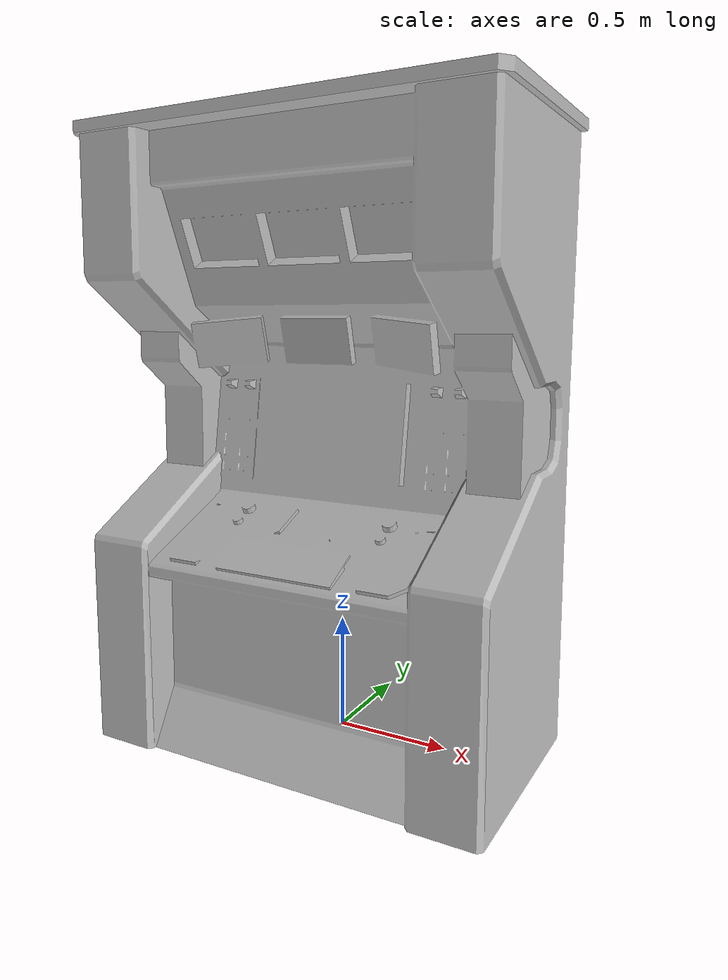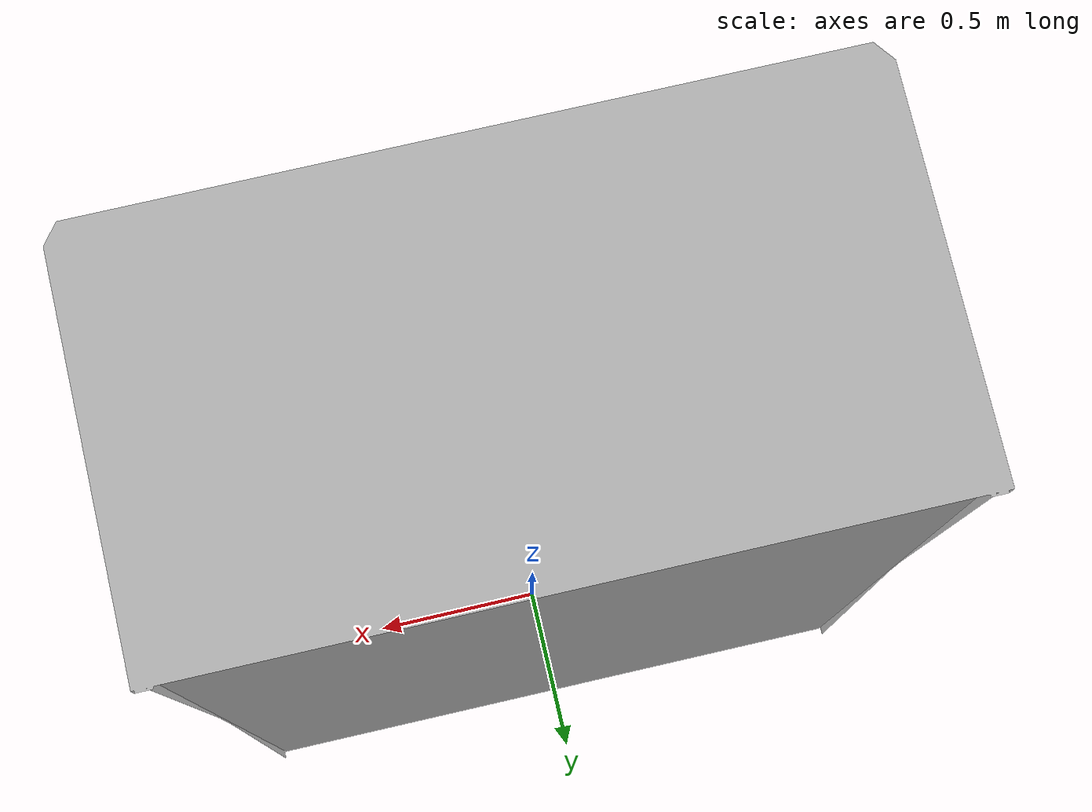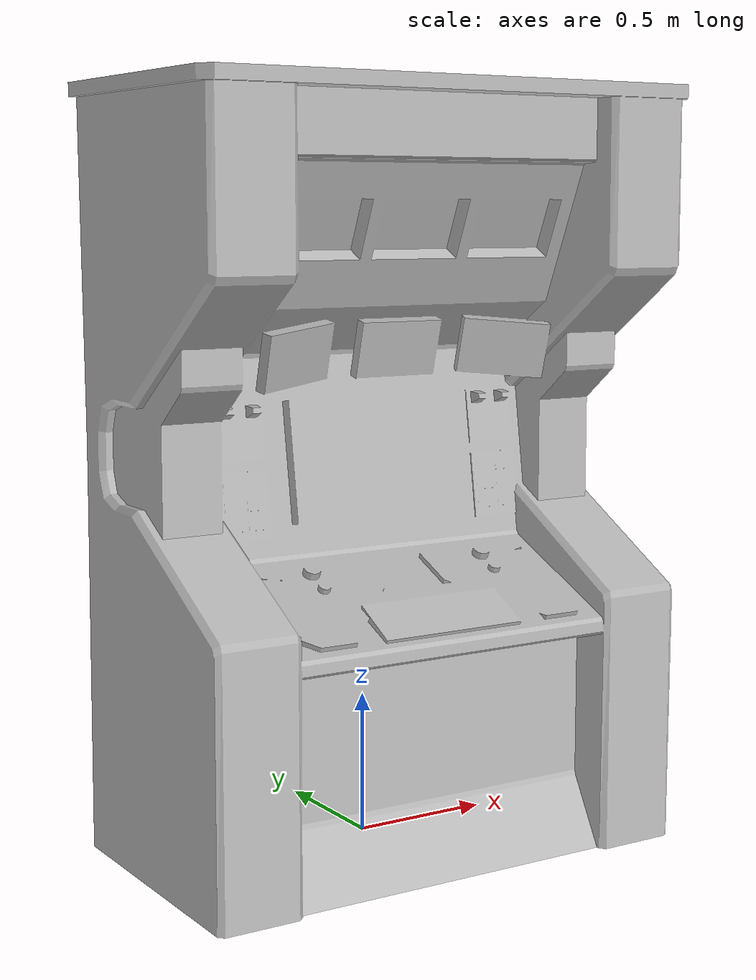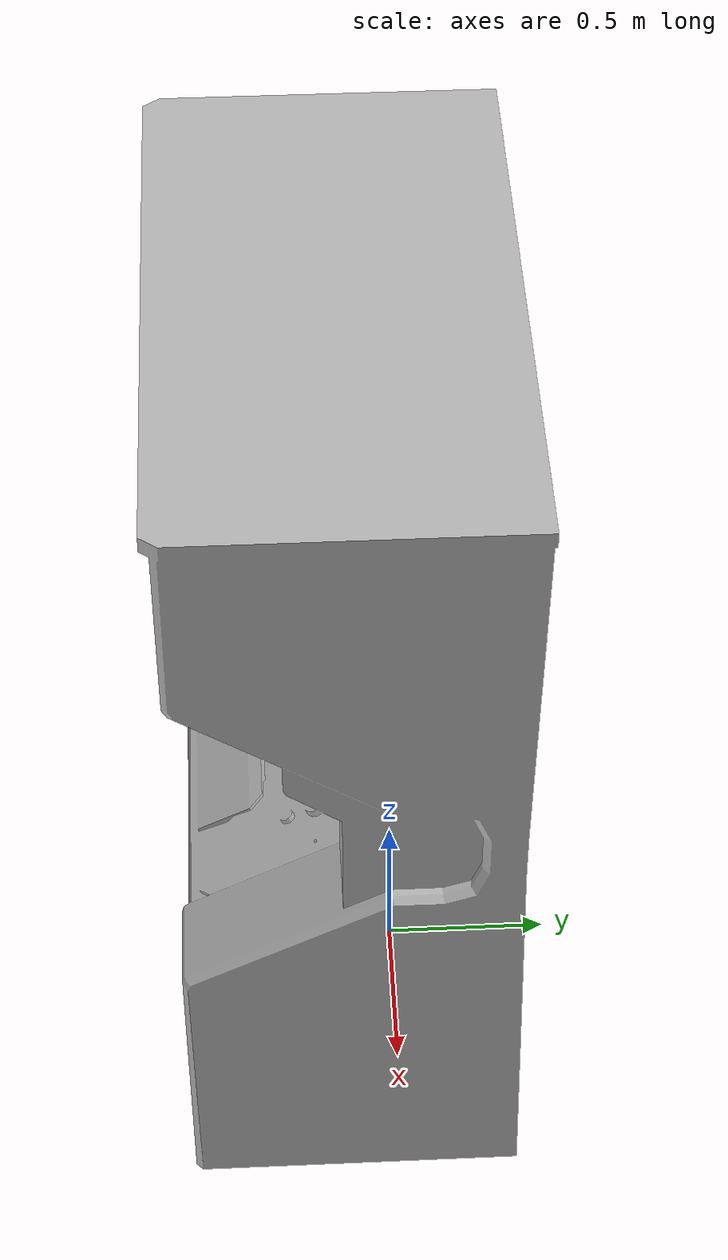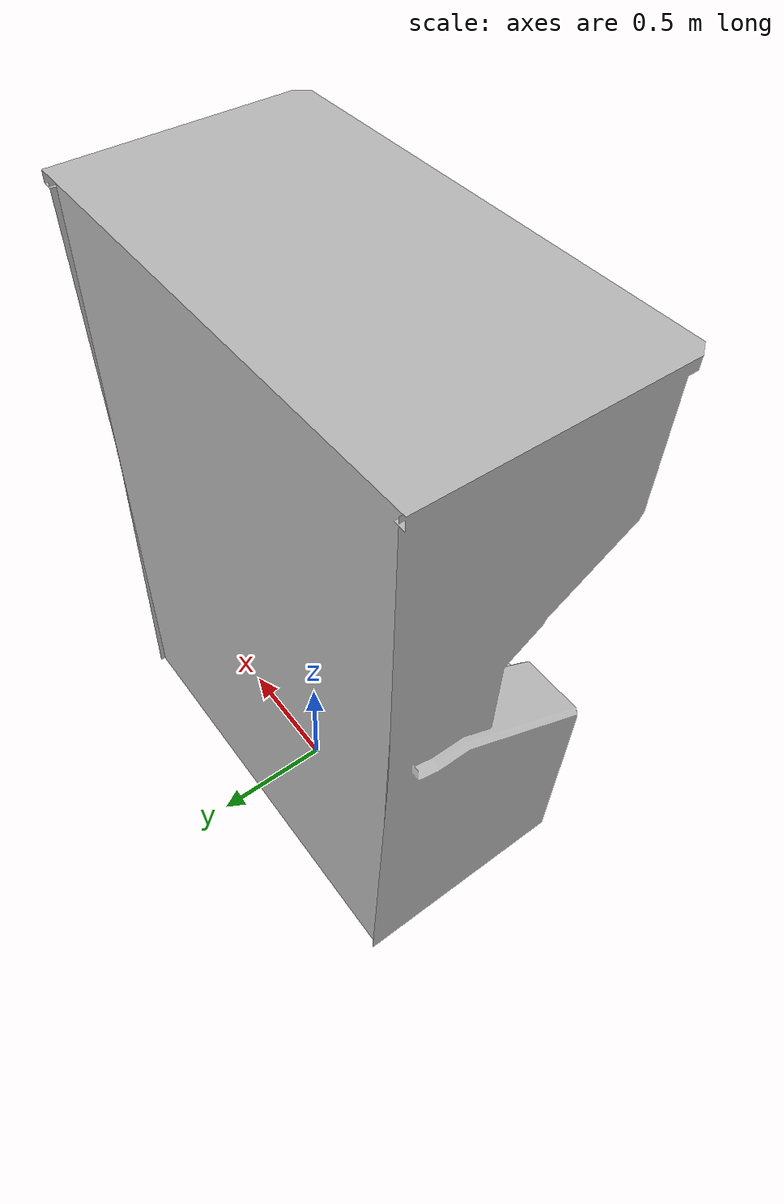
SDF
<?xml version="1.0" ?>
<sdf version="1.6">
  <model name="control_console">
    <static>true</static>
    <link name="link">
      <visual name="visual">
        <geometry>
          <mesh>
            <uri>model://control_console/meshes/console.obj</uri>
          </mesh>
        </geometry>
      </visual>

      <visual name="backvisual">
        <pose>0 0.29388 1.301125 0 0 0</pose>
        <geometry>
          <box>
            <size>1.78 0.05 2.60225</size>
          </box>
        </geometry>
      </visual>

      <collision name="back_collision">
        <pose>0 0.29388 1.301125 0 0 0</pose>
        <geometry>
          <box>
            <size>1.78 0.05 2.60225</size>
          </box>
        </geometry>
      </collision>

      <collision name="base_collision">
        <pose>0 -0.14669 0.4128 0 0 0</pose>
        <geometry>
          <box>
            <size>1.78872 0.97373 0.82560</size>
          </box>
        </geometry>
      </collision>
      <collision name="mid_collision">
        <pose>0 0.04268 1.48248 0 0 0</pose>
        <geometry>
          <box>
            <size>1.70162 0.51806 1.5</size>
          </box>
        </geometry>
      </collision>
      <collision name="top_collision">
        <pose>0 -0.15709 2.31203 0 0 0</pose>
        <geometry>
          <box>
            <size>1.78872 0.95292 0.62632</size>
          </box>
        </geometry>
      </collision>

      <collision name="panel_collision">
        <pose>0 -0.36311 0.90329 0.428775194 0 0</pose>
        <geometry>
          <box>
            <size>1.33522 0.550273114 0.1</size>
          </box>
        </geometry>
      </collision>

      <collision name="left_lower_shoulder_collision">
        <pose>-0.7435 -0.198480 0.87 0.520485 0 0</pose>
        <geometry>
          <box>
            <size>0.30172 0.7 0.5</size>
          </box>
        </geometry>
      </collision>

      <collision name="right_lower_shoulder_collision">
        <pose>0.7435 -0.198480 0.87 0.520485 0 0</pose>
        <geometry>
          <box>
            <size>0.30172 0.7 0.5</size>
          </box>
        </geometry>
      </collision>

      <collision name="left_upper_shoulder_collision">
        <pose>-0.7435 -0.191520 1.992440 -0.620645009 0 0</pose>
        <geometry>
          <box>
            <size>0.30172 0.7 0.5</size>
          </box>
        </geometry>
      </collision>

      <collision name="right_upper_shoulder_collision">
        <pose>0.7435 -0.191520 1.992440 -0.620645009 0 0</pose>
        <geometry>
          <box>
            <size>0.30172 0.7 0.5</size>
          </box>
        </geometry>
      </collision>

    </link>
  </model>
</sdf>
